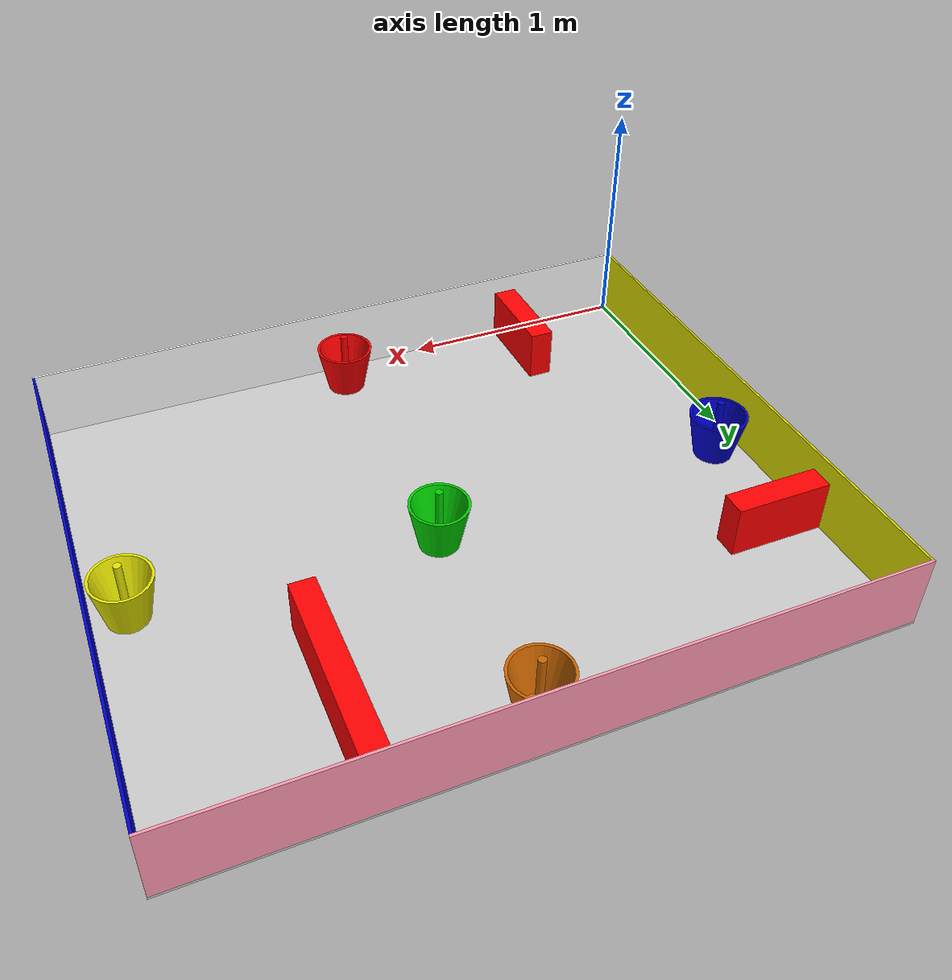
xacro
<?xml version="1.0"?>
<robot xmlns:xacro="http://www.ros.org/wiki/xacro" name="arena">

    <material name="blue">
        <color rgba="0 0 0.8 1"/>
    </material>
    <material name="black">
        <color rgba="0 0 0 1"/>
    </material>
    <material name="white">
        <color rgba="1 1 1 1"/>
    </material>
    <material name="red">
        <color rgba="1.0 0.0 0.0 1.0"/>
    </material>
    <material name="green">
        <color rgba="0.0 0.82 0.0 1"/>
    </material>
    <material name="grey">
        <color rgba="0.8 0.8 0.8 1"/>
    </material>
    <material name="pink">
        <color rgba="1.0 0.6 0.7 1"/>
    </material>
    <material name="orange">
        <color rgba="0.8 0.4 0.0 1"/>
    </material>
    <material name="yellow">
        <color rgba="0.9 0.9 0.0 1"/>
    </material>
    <material name="nocolor">
        <color rgba="0.0 0.0 0.0 0"/>
    </material>

 <xacro:macro name="fixed" params="prefix  mesh material gazebo_material">
        <link name="${prefix}_link">
            <inertial>
                <mass value="100"/>
                <inertia ixx="0.01" ixy="0.0" ixz="0.0" iyy="0.01" iyz="0.0"  izz="0.01"/>
                <origin xyz="0.0 0.0 0.0" rpy="0.0 0.0 0.0" />
            </inertial>
            <visual>
                <origin xyz="0.0 0.0 0.0" rpy="0.0 0.0 0.0"/>
                <geometry>
                    <mesh filename="package://robot_description/meshes/arena/${mesh}" scale="0.001 0.001 0.001"/>
                </geometry>
                <material name="${material}"/>
            </visual>
            <collision>
                <origin xyz="0.0 0.0 0.0" rpy="0.0 0.0 0.0" />
                <geometry>
                    <mesh filename="package://robot_description/meshes/arena/${mesh}" scale="0.001 0.001 0.001"/>
                </geometry>
            </collision>
        </link>
        <joint name="${prefix}_joint" type="fixed">
            <parent link="base_footprint"/>
            <child link="${prefix}_link"/>
            <origin xyz="0.0 0.0 0.0" rpy="0.0 0.0 0.0" />
        </joint>
        <gazebo reference="${prefix}_link">
            <material>${gazebo_material}</material>
        </gazebo>
    </xacro:macro>

    <link name="base_footprint"/>

    <xacro:fixed prefix= "arena_floor"
    mesh= "arena_floor.stl"
    material="grey"
    gazebo_material="Gazebo/Grey"/>

    <xacro:fixed prefix= "arena_wall_yellow"
    mesh= "arena_wall_yellow.stl"
    material="yellow"
    gazebo_material="Gazebo/Yellow"/>

    <xacro:fixed prefix= "arena_wall_blue"
    mesh= "arena_wall_blue.stl"
    material="blue"
    gazebo_material="Gazebo/Blue"/>

    <xacro:fixed prefix= "arena_wall_pink"
    mesh= "arena_wall_pink.stl"
    material="pink"
    gazebo_material="Gazebo/Indigo"/>

    <xacro:fixed prefix= "arena_wall_white"
    mesh= "arena_wall_white.stl"
    material="white"
    gazebo_material="Gazebo/White"/>

    <xacro:fixed prefix= "cubo_blue"
    mesh= "cubo_blue.stl"
    material="blue"
    gazebo_material="Gazebo/Blue"/>

    <xacro:fixed prefix= "cubo_green"
    mesh= "cubo_green.stl"
    material="green"
    gazebo_material="Gazebo/Green"/>

    <xacro:fixed prefix= "cubo_orange"
    mesh= "cubo_orange.stl"
    material="orange"
    gazebo_material="Gazebo/Orange"/>

    <xacro:fixed prefix= "cubo_red"
    mesh= "cubo_red.stl"
    material="red"
    gazebo_material="Gazebo/Red"/>

    <xacro:fixed prefix= "cubo_yellow"
    mesh= "cubo_yellow.stl"
    material="yellow"
    gazebo_material="Gazebo/Yellow"/>

    <xacro:fixed prefix= "box01"
    mesh= "box01.stl"
    material="red"
    gazebo_material="Gazebo/Red"/>

    <xacro:fixed prefix= "box02"
    mesh= "box02.stl"
    material="red"
    gazebo_material="Gazebo/Red"/>

    <xacro:fixed prefix= "box03b"
    mesh= "box03b.stl"
    material="red"
    gazebo_material="Gazebo/Red"/>

</robot>
